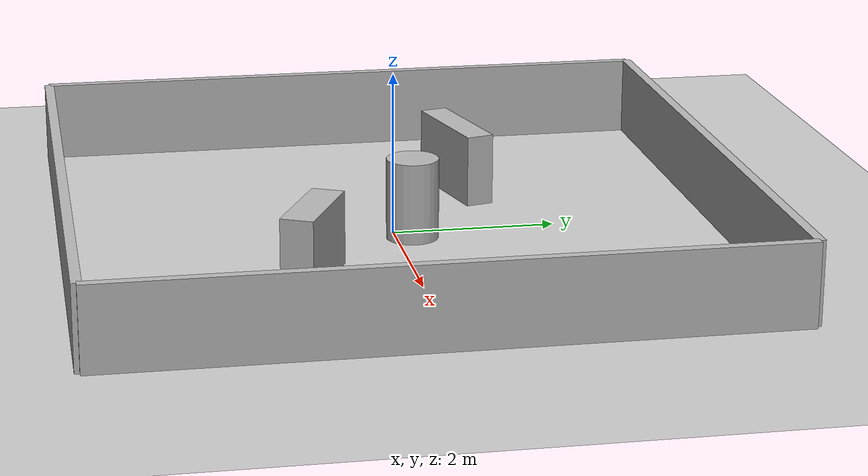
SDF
<?xml version="1.0"?>
<sdf version="1.6">
  <world name="indoor_lab">
    <plugin name="gazebo_ros_init" filename="libgazebo_ros_init.so"/>
    <plugin name="gazebo_ros_factory" filename="libgazebo_ros_factory.so"/>
    <include>
      <uri>model://sun</uri>
    </include>
    <include>
      <uri>model://ground_plane</uri>
    </include>

    <model name="north_wall">
      <static>true</static>
      <pose>0 4 0.5 0 0 0</pose>
      <link name="wall">
        <collision name="collision"><geometry><box><size>8 0.12 1.0</size></box></geometry></collision>
        <visual name="visual"><geometry><box><size>8 0.12 1.0</size></box></geometry></visual>
      </link>
    </model>
    <model name="south_wall">
      <static>true</static>
      <pose>0 -4 0.5 0 0 0</pose>
      <link name="wall">
        <collision name="collision"><geometry><box><size>8 0.12 1.0</size></box></geometry></collision>
        <visual name="visual"><geometry><box><size>8 0.12 1.0</size></box></geometry></visual>
      </link>
    </model>
    <model name="east_wall">
      <static>true</static>
      <pose>4 0 0.5 0 0 0</pose>
      <link name="wall">
        <collision name="collision"><geometry><box><size>0.12 8 1.0</size></box></geometry></collision>
        <visual name="visual"><geometry><box><size>0.12 8 1.0</size></box></geometry></visual>
      </link>
    </model>
    <model name="west_wall">
      <static>true</static>
      <pose>-4 0 0.5 0 0 0</pose>
      <link name="wall">
        <collision name="collision"><geometry><box><size>0.12 8 1.0</size></box></geometry></collision>
        <visual name="visual"><geometry><box><size>0.12 8 1.0</size></box></geometry></visual>
      </link>
    </model>

    <model name="shelf_a">
      <static>true</static>
      <pose>-1.6 1.1 0.45 0 0 0.25</pose>
      <link name="body">
        <collision name="collision"><geometry><box><size>1.4 0.35 0.9</size></box></geometry></collision>
        <visual name="visual"><geometry><box><size>1.4 0.35 0.9</size></box></geometry></visual>
      </link>
    </model>
    <model name="shelf_b">
      <static>true</static>
      <pose>1.5 -1.2 0.45 0 0 -0.45</pose>
      <link name="body">
        <collision name="collision"><geometry><box><size>1.2 0.4 0.9</size></box></geometry></collision>
        <visual name="visual"><geometry><box><size>1.2 0.4 0.9</size></box></geometry></visual>
      </link>
    </model>
    <model name="center_column">
      <static>true</static>
      <pose>0.2 0.2 0.5 0 0 0</pose>
      <link name="body">
        <collision name="collision"><geometry><cylinder><radius>0.32</radius><length>1.0</length></cylinder></geometry></collision>
        <visual name="visual"><geometry><cylinder><radius>0.32</radius><length>1.0</length></cylinder></geometry></visual>
      </link>
    </model>
  </world>
</sdf>
